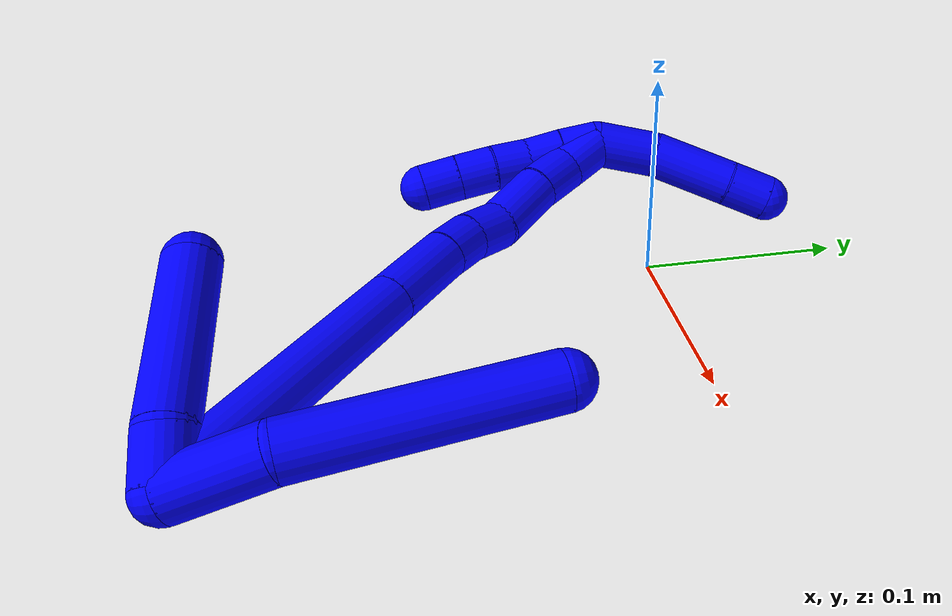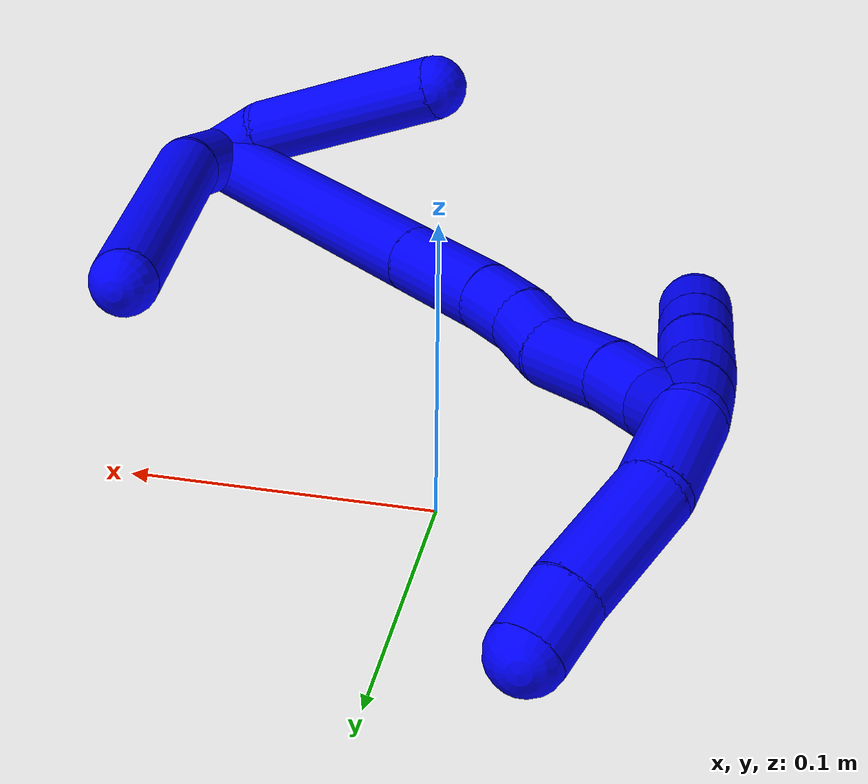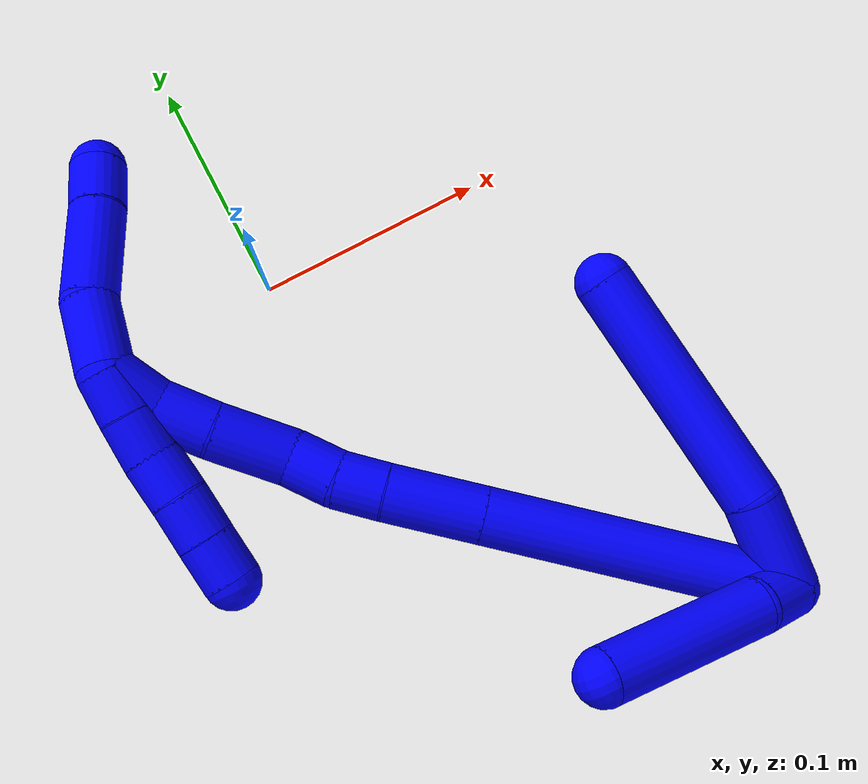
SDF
<sdf version="1.7">
 <world name="default">
  <model name="1">
   <static>0</static>
   <link name="1">
    <collision name="collision-cylinder-e_1_2_8">
     <pose>-0.003064 -3.9e-05 0.020586 0.001913 -0.147737 -0.000142</pose>
     <geometry><cylinder><radius>0.0125</radius><length>0.041626</length></cylinder></geometry>
     <surface>
      <friction><ode><mu>1.16</mu><mu2>1.16</mu2><slip1>0</slip1><slip2>0</slip2></ode></friction>
      <contact><ode><kp>1e+06</kp><kd>1</kd><max_vel>0</max_vel><min_depth>0.001</min_depth></ode></contact>
     </surface>
    </collision>
    <visual name="visual-cylinder-e_1_2_8">
     <pose>-0.003064 -3.9e-05 0.020586 0.001913 -0.147737 -0.000142</pose>
     <geometry><cylinder><radius>0.0125</radius><length>0.041626</length></cylinder></geometry>
     <material><ambient>0 0 1 1</ambient></material>
    </visual>
    <collision name="collision-cylinder-e_2_8_6">
     <pose>0.000503 0.004969 0.094715 -0.094006 0.122664 -0.005777</pose>
     <geometry><cylinder><radius>0.0125</radius><length>0.108374</length></cylinder></geometry>
     <surface>
      <friction><ode><mu>1.16</mu><mu2>1.16</mu2><slip1>0</slip1><slip2>0</slip2></ode></friction>
      <contact><ode><kp>1e+06</kp><kd>1</kd><max_vel>0</max_vel><min_depth>0.001</min_depth></ode></contact>
     </surface>
    </collision>
    <visual name="visual-cylinder-e_2_8_6">
     <pose>0.000503 0.004969 0.094715 -0.094006 0.122664 -0.005777</pose>
     <geometry><cylinder><radius>0.0125</radius><length>0.108374</length></cylinder></geometry>
     <material><ambient>0 0 1 1</ambient></material>
    </visual>
    <collision name="collision-cylinder-e_1_2_9">
     <pose>-0.0049 0.01035 0.001474 -1.42937 -0.438282 0.3818</pose>
     <geometry><cylinder><radius>0.0125</radius><length>0.023091</length></cylinder></geometry>
     <surface>
      <friction><ode><mu>1.16</mu><mu2>1.16</mu2><slip1>0</slip1><slip2>0</slip2></ode></friction>
      <contact><ode><kp>1e+06</kp><kd>1</kd><max_vel>0</max_vel><min_depth>0.001</min_depth></ode></contact>
     </surface>
    </collision>
    <visual name="visual-cylinder-e_1_2_9">
     <pose>-0.0049 0.01035 0.001474 -1.42937 -0.438282 0.3818</pose>
     <geometry><cylinder><radius>0.0125</radius><length>0.023091</length></cylinder></geometry>
     <material><ambient>0 0 1 1</ambient></material>
    </visual>
    <collision name="collision-cylinder-e_2_9_5">
     <pose>-0.016529 0.058237 0.007888 -1.43992 -0.175909 0.154363</pose>
     <geometry><cylinder><radius>0.0125</radius><length>0.076909</length></cylinder></geometry>
     <surface>
      <friction><ode><mu>1.16</mu><mu2>1.16</mu2><slip1>0</slip1><slip2>0</slip2></ode></friction>
      <contact><ode><kp>1e+06</kp><kd>1</kd><max_vel>0</max_vel><min_depth>0.001</min_depth></ode></contact>
     </surface>
    </collision>
    <visual name="visual-cylinder-e_2_9_5">
     <pose>-0.016529 0.058237 0.007888 -1.43992 -0.175909 0.154363</pose>
     <geometry><cylinder><radius>0.0125</radius><length>0.076909</length></cylinder></geometry>
     <material><ambient>0 0 1 1</ambient></material>
    </visual>
    <collision name="collision-cylinder-e_1_2_10">
     <pose>0.012546 0.048591 0.042269 -0.854858 0.192389 -0.08785</pose>
     <geometry><cylinder><radius>0.0125</radius><length>0.131227</length></cylinder></geometry>
     <surface>
      <friction><ode><mu>1.16</mu><mu2>1.16</mu2><slip1>0</slip1><slip2>0</slip2></ode></friction>
      <contact><ode><kp>1e+06</kp><kd>1</kd><max_vel>0</max_vel><min_depth>0.001</min_depth></ode></contact>
     </surface>
    </collision>
    <visual name="visual-cylinder-e_1_2_10">
     <pose>0.012546 0.048591 0.042269 -0.854858 0.192389 -0.08785</pose>
     <geometry><cylinder><radius>0.0125</radius><length>0.131227</length></cylinder></geometry>
     <material><ambient>0 0 1 1</ambient></material>
    </visual>
    <collision name="collision-cylinder-e_2_10_11">
     <pose>0.029097 0.112702 0.098031 -0.855215 0.192393 -0.087894</pose>
     <geometry><cylinder><radius>0.0125</radius><length>0.041904</length></cylinder></geometry>
     <surface>
      <friction><ode><mu>1.16</mu><mu2>1.16</mu2><slip1>0</slip1><slip2>0</slip2></ode></friction>
      <contact><ode><kp>1e+06</kp><kd>1</kd><max_vel>0</max_vel><min_depth>0.001</min_depth></ode></contact>
     </surface>
    </collision>
    <visual name="visual-cylinder-e_2_10_11">
     <pose>0.029097 0.112702 0.098031 -0.855215 0.192393 -0.087894</pose>
     <geometry><cylinder><radius>0.0125</radius><length>0.041904</length></cylinder></geometry>
     <material><ambient>0 0 1 1</ambient></material>
    </visual>
    <collision name="collision-cylinder-e_3_11_12">
     <pose>0.035661 0.135515 0.118318 -0.820671 0.25121 -0.109752</pose>
     <geometry><cylinder><radius>0.0125</radius><length>0.020581</length></cylinder></geometry>
     <surface>
      <friction><ode><mu>1.16</mu><mu2>1.16</mu2><slip1>0</slip1><slip2>0</slip2></ode></friction>
      <contact><ode><kp>1e+06</kp><kd>1</kd><max_vel>0</max_vel><min_depth>0.001</min_depth></ode></contact>
     </surface>
    </collision>
    <visual name="visual-cylinder-e_3_11_12">
     <pose>0.035661 0.135515 0.118318 -0.820671 0.25121 -0.109752</pose>
     <geometry><cylinder><radius>0.0125</radius><length>0.020581</length></cylinder></geometry>
     <material><ambient>0 0 1 1</ambient></material>
    </visual>
    <collision name="collision-cylinder-e_4_12_13">
     <pose>0.041423 0.148814 0.13348 -0.622635 0.301557 -0.0977</pose>
     <geometry><cylinder><radius>0.0125</radius><length>0.021572</length></cylinder></geometry>
     <surface>
      <friction><ode><mu>1.16</mu><mu2>1.16</mu2><slip1>0</slip1><slip2>0</slip2></ode></friction>
      <contact><ode><kp>1e+06</kp><kd>1</kd><max_vel>0</max_vel><min_depth>0.001</min_depth></ode></contact>
     </surface>
    </collision>
    <visual name="visual-cylinder-e_4_12_13">
     <pose>0.041423 0.148814 0.13348 -0.622635 0.301557 -0.0977</pose>
     <geometry><cylinder><radius>0.0125</radius><length>0.021572</length></cylinder></geometry>
     <material><ambient>0 0 1 1</ambient></material>
    </visual>
    <collision name="collision-cylinder-e_5_13_14">
     <pose>0.045355 0.166927 0.154285 -0.771877 0.041936 -0.017041</pose>
     <geometry><cylinder><radius>0.0125</radius><length>0.034746</length></cylinder></geometry>
     <surface>
      <friction><ode><mu>1.16</mu><mu2>1.16</mu2><slip1>0</slip1><slip2>0</slip2></ode></friction>
      <contact><ode><kp>1e+06</kp><kd>1</kd><max_vel>0</max_vel><min_depth>0.001</min_depth></ode></contact>
     </surface>
    </collision>
    <visual name="visual-cylinder-e_5_13_14">
     <pose>0.045355 0.166927 0.154285 -0.771877 0.041936 -0.017041</pose>
     <geometry><cylinder><radius>0.0125</radius><length>0.034746</length></cylinder></geometry>
     <material><ambient>0 0 1 1</ambient></material>
    </visual>
    <collision name="collision-cylinder-e_6_14_15">
     <pose>0.047685 0.18714 0.1763 -0.702429 0.126987 -0.046583</pose>
     <geometry><cylinder><radius>0.0125</radius><length>0.025297</length></cylinder></geometry>
     <surface>
      <friction><ode><mu>1.16</mu><mu2>1.16</mu2><slip1>0</slip1><slip2>0</slip2></ode></friction>
      <contact><ode><kp>1e+06</kp><kd>1</kd><max_vel>0</max_vel><min_depth>0.001</min_depth></ode></contact>
     </surface>
    </collision>
    <visual name="visual-cylinder-e_6_14_15">
     <pose>0.047685 0.18714 0.1763 -0.702429 0.126987 -0.046583</pose>
     <geometry><cylinder><radius>0.0125</radius><length>0.025297</length></cylinder></geometry>
     <material><ambient>0 0 1 1</ambient></material>
    </visual>
    <collision name="collision-cylinder-e_7_15_1">
     <pose>0.048045 0.201128 0.196649 -0.499826 -0.100812 0.025753</pose>
     <geometry><cylinder><radius>0.0125</radius><length>0.024673</length></cylinder></geometry>
     <surface>
      <friction><ode><mu>1.16</mu><mu2>1.16</mu2><slip1>0</slip1><slip2>0</slip2></ode></friction>
      <contact><ode><kp>1e+06</kp><kd>1</kd><max_vel>0</max_vel><min_depth>0.001</min_depth></ode></contact>
     </surface>
    </collision>
    <visual name="visual-cylinder-e_7_15_1">
     <pose>0.048045 0.201128 0.196649 -0.499826 -0.100812 0.025753</pose>
     <geometry><cylinder><radius>0.0125</radius><length>0.024673</length></cylinder></geometry>
     <material><ambient>0 0 1 1</ambient></material>
    </visual>
    <collision name="collision-cylinder-e_1_1_16">
     <pose>0.05201 0.202927 0.222594 0.262934 0.319937 0.042663</pose>
     <geometry><cylinder><radius>0.0125</radius><length>0.033105</length></cylinder></geometry>
     <surface>
      <friction><ode><mu>1.16</mu><mu2>1.16</mu2><slip1>0</slip1><slip2>0</slip2></ode></friction>
      <contact><ode><kp>1e+06</kp><kd>1</kd><max_vel>0</max_vel><min_depth>0.001</min_depth></ode></contact>
     </surface>
    </collision>
    <visual name="visual-cylinder-e_1_1_16">
     <pose>0.05201 0.202927 0.222594 0.262934 0.319937 0.042663</pose>
     <geometry><cylinder><radius>0.0125</radius><length>0.033105</length></cylinder></geometry>
     <material><ambient>0 0 1 1</ambient></material>
    </visual>
    <collision name="collision-cylinder-e_2_16_17">
     <pose>0.064706 0.187864 0.255586 0.552195 0.343662 0.098262</pose>
     <geometry><cylinder><radius>0.0125</radius><length>0.04446</length></cylinder></geometry>
     <surface>
      <friction><ode><mu>1.16</mu><mu2>1.16</mu2><slip1>0</slip1><slip2>0</slip2></ode></friction>
      <contact><ode><kp>1e+06</kp><kd>1</kd><max_vel>0</max_vel><min_depth>0.001</min_depth></ode></contact>
     </surface>
    </collision>
    <visual name="visual-cylinder-e_2_16_17">
     <pose>0.064706 0.187864 0.255586 0.552195 0.343662 0.098262</pose>
     <geometry><cylinder><radius>0.0125</radius><length>0.04446</length></cylinder></geometry>
     <material><ambient>0 0 1 1</ambient></material>
    </visual>
    <collision name="collision-cylinder-e_3_17_4">
     <pose>0.076601 0.172073 0.282531 0.485211 0.403547 0.101161</pose>
     <geometry><cylinder><radius>0.0125</radius><length>0.022435</length></cylinder></geometry>
     <surface>
      <friction><ode><mu>1.16</mu><mu2>1.16</mu2><slip1>0</slip1><slip2>0</slip2></ode></friction>
      <contact><ode><kp>1e+06</kp><kd>1</kd><max_vel>0</max_vel><min_depth>0.001</min_depth></ode></contact>
     </surface>
    </collision>
    <visual name="visual-cylinder-e_3_17_4">
     <pose>0.076601 0.172073 0.282531 0.485211 0.403547 0.101161</pose>
     <geometry><cylinder><radius>0.0125</radius><length>0.022435</length></cylinder></geometry>
     <material><ambient>0 0 1 1</ambient></material>
    </visual>
    <collision name="collision-cylinder-e_1_1_18">
     <pose>0.046585 0.206918 0.197424 3.1323 -0.021861 -2.33741</pose>
     <geometry><cylinder><radius>0.0125</radius><length>0.02</length></cylinder></geometry>
     <surface>
      <friction><ode><mu>1.16</mu><mu2>1.16</mu2><slip1>0</slip1><slip2>0</slip2></ode></friction>
      <contact><ode><kp>1e+06</kp><kd>1</kd><max_vel>0</max_vel><min_depth>0.001</min_depth></ode></contact>
     </surface>
    </collision>
    <visual name="visual-cylinder-e_1_1_18">
     <pose>0.046585 0.206918 0.197424 3.1323 -0.021861 -2.33741</pose>
     <geometry><cylinder><radius>0.0125</radius><length>0.02</length></cylinder></geometry>
     <material><ambient>0 0 1 1</ambient></material>
    </visual>
    <collision name="collision-cylinder-e_2_18_19">
     <pose>0.046576 0.206349 0.17744 3.09398 0.020906 0.827351</pose>
     <geometry><cylinder><radius>0.0125</radius><length>0.02</length></cylinder></geometry>
     <surface>
      <friction><ode><mu>1.16</mu><mu2>1.16</mu2><slip1>0</slip1><slip2>0</slip2></ode></friction>
      <contact><ode><kp>1e+06</kp><kd>1</kd><max_vel>0</max_vel><min_depth>0.001</min_depth></ode></contact>
     </surface>
    </collision>
    <visual name="visual-cylinder-e_2_18_19">
     <pose>0.046576 0.206349 0.17744 3.09398 0.020906 0.827351</pose>
     <geometry><cylinder><radius>0.0125</radius><length>0.02</length></cylinder></geometry>
     <material><ambient>0 0 1 1</ambient></material>
    </visual>
    <collision name="collision-cylinder-e_3_19_20">
     <pose>0.045607 0.204733 0.157589 3.02656 -0.118025 -1.59652</pose>
     <geometry><cylinder><radius>0.0125</radius><length>0.02</length></cylinder></geometry>
     <surface>
      <friction><ode><mu>1.16</mu><mu2>1.16</mu2><slip1>0</slip1><slip2>0</slip2></ode></friction>
      <contact><ode><kp>1e+06</kp><kd>1</kd><max_vel>0</max_vel><min_depth>0.001</min_depth></ode></contact>
     </surface>
    </collision>
    <visual name="visual-cylinder-e_3_19_20">
     <pose>0.045607 0.204733 0.157589 3.02656 -0.118025 -1.59652</pose>
     <geometry><cylinder><radius>0.0125</radius><length>0.02</length></cylinder></geometry>
     <material><ambient>0 0 1 1</ambient></material>
    </visual>
    <collision name="collision-cylinder-e_4_20_21">
     <pose>0.044096 0.20268 0.137772 3.05004 -0.033377 -0.698781</pose>
     <geometry><cylinder><radius>0.0125</radius><length>0.02</length></cylinder></geometry>
     <surface>
      <friction><ode><mu>1.16</mu><mu2>1.16</mu2><slip1>0</slip1><slip2>0</slip2></ode></friction>
      <contact><ode><kp>1e+06</kp><kd>1</kd><max_vel>0</max_vel><min_depth>0.001</min_depth></ode></contact>
     </surface>
    </collision>
    <visual name="visual-cylinder-e_4_20_21">
     <pose>0.044096 0.20268 0.137772 3.05004 -0.033377 -0.698781</pose>
     <geometry><cylinder><radius>0.0125</radius><length>0.02</length></cylinder></geometry>
     <material><ambient>0 0 1 1</ambient></material>
    </visual>
    <collision name="collision-cylinder-e_5_21_3">
     <pose>0.043635 0.200702 0.117877 3.03495 -0.012762 -0.237983</pose>
     <geometry><cylinder><radius>0.0125</radius><length>0.02</length></cylinder></geometry>
     <surface>
      <friction><ode><mu>1.16</mu><mu2>1.16</mu2><slip1>0</slip1><slip2>0</slip2></ode></friction>
      <contact><ode><kp>1e+06</kp><kd>1</kd><max_vel>0</max_vel><min_depth>0.001</min_depth></ode></contact>
     </surface>
    </collision>
    <visual name="visual-cylinder-e_5_21_3">
     <pose>0.043635 0.200702 0.117877 3.03495 -0.012762 -0.237983</pose>
     <geometry><cylinder><radius>0.0125</radius><length>0.02</length></cylinder></geometry>
     <material><ambient>0 0 1 1</ambient></material>
    </visual>
    <collision name="collision-sphere-3">
     <pose>0.043507 0.199637 0.107934 0 -0 0</pose>
     <geometry><sphere><radius>0.0125</radius></sphere></geometry>
     <surface>
      <friction><ode><mu>1.16</mu><mu2>1.16</mu2><slip1>0</slip1><slip2>0</slip2></ode></friction>
      <contact><ode><kp>1e+06</kp><kd>1</kd><max_vel>0</max_vel><min_depth>0.001</min_depth></ode></contact>
     </surface>
    </collision>
    <visual name="visual-sphere-3">
     <pose>0.043507 0.199637 0.107934 0 -0 0</pose>
     <geometry><sphere><radius>0.0125</radius></sphere></geometry>
     <material><ambient>0 0 1 1</ambient></material>
    </visual>
    <collision name="collision-sphere-21">
     <pose>0.043762 0.201766 0.127819 0 -0 0</pose>
     <geometry><sphere><radius>0.0125</radius></sphere></geometry>
     <surface>
      <friction><ode><mu>1.16</mu><mu2>1.16</mu2><slip1>0</slip1><slip2>0</slip2></ode></friction>
      <contact><ode><kp>1e+06</kp><kd>1</kd><max_vel>0</max_vel><min_depth>0.001</min_depth></ode></contact>
     </surface>
    </collision>
    <visual name="visual-sphere-21">
     <pose>0.043762 0.201766 0.127819 0 -0 0</pose>
     <geometry><sphere><radius>0.0125</radius></sphere></geometry>
     <material><ambient>0 0 1 1</ambient></material>
    </visual>
    <collision name="collision-sphere-20">
     <pose>0.04443 0.203593 0.147724 0 -0 0</pose>
     <geometry><sphere><radius>0.0125</radius></sphere></geometry>
     <surface>
      <friction><ode><mu>1.16</mu><mu2>1.16</mu2><slip1>0</slip1><slip2>0</slip2></ode></friction>
      <contact><ode><kp>1e+06</kp><kd>1</kd><max_vel>0</max_vel><min_depth>0.001</min_depth></ode></contact>
     </surface>
    </collision>
    <visual name="visual-sphere-20">
     <pose>0.04443 0.203593 0.147724 0 -0 0</pose>
     <geometry><sphere><radius>0.0125</radius></sphere></geometry>
     <material><ambient>0 0 1 1</ambient></material>
    </visual>
    <collision name="collision-sphere-19">
     <pose>0.046785 0.205873 0.167454 0 -0 0</pose>
     <geometry><sphere><radius>0.0125</radius></sphere></geometry>
     <surface>
      <friction><ode><mu>1.16</mu><mu2>1.16</mu2><slip1>0</slip1><slip2>0</slip2></ode></friction>
      <contact><ode><kp>1e+06</kp><kd>1</kd><max_vel>0</max_vel><min_depth>0.001</min_depth></ode></contact>
     </surface>
    </collision>
    <visual name="visual-sphere-19">
     <pose>0.046785 0.205873 0.167454 0 -0 0</pose>
     <geometry><sphere><radius>0.0125</radius></sphere></geometry>
     <material><ambient>0 0 1 1</ambient></material>
    </visual>
    <collision name="collision-sphere-10">
     <pose>0.025091 0.097181 0.084539 0 -0 0</pose>
     <geometry><sphere><radius>0.0125</radius></sphere></geometry>
     <surface>
      <friction><ode><mu>1.16</mu><mu2>1.16</mu2><slip1>0</slip1><slip2>0</slip2></ode></friction>
      <contact><ode><kp>1e+06</kp><kd>1</kd><max_vel>0</max_vel><min_depth>0.001</min_depth></ode></contact>
     </surface>
    </collision>
    <visual name="visual-sphere-10">
     <pose>0.025091 0.097181 0.084539 0 -0 0</pose>
     <geometry><sphere><radius>0.0125</radius></sphere></geometry>
     <material><ambient>0 0 1 1</ambient></material>
    </visual>
    <collision name="collision-sphere-5">
     <pose>-0.023259 0.095774 0.012829 0 -0 0</pose>
     <geometry><sphere><radius>0.0125</radius></sphere></geometry>
     <surface>
      <friction><ode><mu>1.16</mu><mu2>1.16</mu2><slip1>0</slip1><slip2>0</slip2></ode></friction>
      <contact><ode><kp>1e+06</kp><kd>1</kd><max_vel>0</max_vel><min_depth>0.001</min_depth></ode></contact>
     </surface>
    </collision>
    <visual name="visual-sphere-5">
     <pose>-0.023259 0.095774 0.012829 0 -0 0</pose>
     <geometry><sphere><radius>0.0125</radius></sphere></geometry>
     <material><ambient>0 0 1 1</ambient></material>
    </visual>
    <collision name="collision-sphere-6">
     <pose>0.007133 0.010018 0.148257 0 -0 0</pose>
     <geometry><sphere><radius>0.0125</radius></sphere></geometry>
     <surface>
      <friction><ode><mu>1.16</mu><mu2>1.16</mu2><slip1>0</slip1><slip2>0</slip2></ode></friction>
      <contact><ode><kp>1e+06</kp><kd>1</kd><max_vel>0</max_vel><min_depth>0.001</min_depth></ode></contact>
     </surface>
    </collision>
    <visual name="visual-sphere-6">
     <pose>0.007133 0.010018 0.148257 0 -0 0</pose>
     <geometry><sphere><radius>0.0125</radius></sphere></geometry>
     <material><ambient>0 0 1 1</ambient></material>
    </visual>
    <collision name="collision-sphere-9">
     <pose>-0.009799 0.020699 0.002947 0 -0 0</pose>
     <geometry><sphere><radius>0.0125</radius></sphere></geometry>
     <surface>
      <friction><ode><mu>1.16</mu><mu2>1.16</mu2><slip1>0</slip1><slip2>0</slip2></ode></friction>
      <contact><ode><kp>1e+06</kp><kd>1</kd><max_vel>0</max_vel><min_depth>0.001</min_depth></ode></contact>
     </surface>
    </collision>
    <visual name="visual-sphere-9">
     <pose>-0.009799 0.020699 0.002947 0 -0 0</pose>
     <geometry><sphere><radius>0.0125</radius></sphere></geometry>
     <material><ambient>0 0 1 1</ambient></material>
    </visual>
    <collision name="collision-sphere-2">
     <geometry><sphere><radius>0.0125</radius></sphere></geometry>
     <surface>
      <friction><ode><mu>1.16</mu><mu2>1.16</mu2><slip1>0</slip1><slip2>0</slip2></ode></friction>
      <contact><ode><kp>1e+06</kp><kd>1</kd><max_vel>0</max_vel><min_depth>0.001</min_depth></ode></contact>
     </surface>
    </collision>
    <visual name="visual-sphere-2">
     <geometry><sphere><radius>0.0125</radius></sphere></geometry>
     <material><ambient>0 0 1 1</ambient></material>
    </visual>
    <collision name="collision-sphere-8">
     <pose>-0.006127 -7.9e-05 0.041172 0 -0 0</pose>
     <geometry><sphere><radius>0.0125</radius></sphere></geometry>
     <surface>
      <friction><ode><mu>1.16</mu><mu2>1.16</mu2><slip1>0</slip1><slip2>0</slip2></ode></friction>
      <contact><ode><kp>1e+06</kp><kd>1</kd><max_vel>0</max_vel><min_depth>0.001</min_depth></ode></contact>
     </surface>
    </collision>
    <visual name="visual-sphere-8">
     <pose>-0.006127 -7.9e-05 0.041172 0 -0 0</pose>
     <geometry><sphere><radius>0.0125</radius></sphere></geometry>
     <material><ambient>0 0 1 1</ambient></material>
    </visual>
    <collision name="collision-sphere-11">
     <pose>0.033104 0.128223 0.111523 0 -0 0</pose>
     <geometry><sphere><radius>0.0125</radius></sphere></geometry>
     <surface>
      <friction><ode><mu>1.16</mu><mu2>1.16</mu2><slip1>0</slip1><slip2>0</slip2></ode></friction>
      <contact><ode><kp>1e+06</kp><kd>1</kd><max_vel>0</max_vel><min_depth>0.001</min_depth></ode></contact>
     </surface>
    </collision>
    <visual name="visual-sphere-11">
     <pose>0.033104 0.128223 0.111523 0 -0 0</pose>
     <geometry><sphere><radius>0.0125</radius></sphere></geometry>
     <material><ambient>0 0 1 1</ambient></material>
    </visual>
    <collision name="collision-sphere-12">
     <pose>0.038219 0.142807 0.125113 0 -0 0</pose>
     <geometry><sphere><radius>0.0125</radius></sphere></geometry>
     <surface>
      <friction><ode><mu>1.16</mu><mu2>1.16</mu2><slip1>0</slip1><slip2>0</slip2></ode></friction>
      <contact><ode><kp>1e+06</kp><kd>1</kd><max_vel>0</max_vel><min_depth>0.001</min_depth></ode></contact>
     </surface>
    </collision>
    <visual name="visual-sphere-12">
     <pose>0.038219 0.142807 0.125113 0 -0 0</pose>
     <geometry><sphere><radius>0.0125</radius></sphere></geometry>
     <material><ambient>0 0 1 1</ambient></material>
    </visual>
    <collision name="collision-sphere-13">
     <pose>0.044627 0.15482 0.141846 0 -0 0</pose>
     <geometry><sphere><radius>0.0125</radius></sphere></geometry>
     <surface>
      <friction><ode><mu>1.16</mu><mu2>1.16</mu2><slip1>0</slip1><slip2>0</slip2></ode></friction>
      <contact><ode><kp>1e+06</kp><kd>1</kd><max_vel>0</max_vel><min_depth>0.001</min_depth></ode></contact>
     </surface>
    </collision>
    <visual name="visual-sphere-13">
     <pose>0.044627 0.15482 0.141846 0 -0 0</pose>
     <geometry><sphere><radius>0.0125</radius></sphere></geometry>
     <material><ambient>0 0 1 1</ambient></material>
    </visual>
    <collision name="collision-sphere-14">
     <pose>0.046083 0.179033 0.166723 0 -0 0</pose>
     <geometry><sphere><radius>0.0125</radius></sphere></geometry>
     <surface>
      <friction><ode><mu>1.16</mu><mu2>1.16</mu2><slip1>0</slip1><slip2>0</slip2></ode></friction>
      <contact><ode><kp>1e+06</kp><kd>1</kd><max_vel>0</max_vel><min_depth>0.001</min_depth></ode></contact>
     </surface>
    </collision>
    <visual name="visual-sphere-14">
     <pose>0.046083 0.179033 0.166723 0 -0 0</pose>
     <geometry><sphere><radius>0.0125</radius></sphere></geometry>
     <material><ambient>0 0 1 1</ambient></material>
    </visual>
    <collision name="collision-sphere-15">
     <pose>0.049287 0.195246 0.185877 0 -0 0</pose>
     <geometry><sphere><radius>0.0125</radius></sphere></geometry>
     <surface>
      <friction><ode><mu>1.16</mu><mu2>1.16</mu2><slip1>0</slip1><slip2>0</slip2></ode></friction>
      <contact><ode><kp>1e+06</kp><kd>1</kd><max_vel>0</max_vel><min_depth>0.001</min_depth></ode></contact>
     </surface>
    </collision>
    <visual name="visual-sphere-15">
     <pose>0.049287 0.195246 0.185877 0 -0 0</pose>
     <geometry><sphere><radius>0.0125</radius></sphere></geometry>
     <material><ambient>0 0 1 1</ambient></material>
    </visual>
    <collision name="collision-sphere-1">
     <pose>0.046804 0.207011 0.207421 0 -0 0</pose>
     <geometry><sphere><radius>0.0125</radius></sphere></geometry>
     <surface>
      <friction><ode><mu>1.16</mu><mu2>1.16</mu2><slip1>0</slip1><slip2>0</slip2></ode></friction>
      <contact><ode><kp>1e+06</kp><kd>1</kd><max_vel>0</max_vel><min_depth>0.001</min_depth></ode></contact>
     </surface>
    </collision>
    <visual name="visual-sphere-1">
     <pose>0.046804 0.207011 0.207421 0 -0 0</pose>
     <geometry><sphere><radius>0.0125</radius></sphere></geometry>
     <material><ambient>0 0 1 1</ambient></material>
    </visual>
    <collision name="collision-sphere-18">
     <pose>0.046367 0.206825 0.187427 0 -0 0</pose>
     <geometry><sphere><radius>0.0125</radius></sphere></geometry>
     <surface>
      <friction><ode><mu>1.16</mu><mu2>1.16</mu2><slip1>0</slip1><slip2>0</slip2></ode></friction>
      <contact><ode><kp>1e+06</kp><kd>1</kd><max_vel>0</max_vel><min_depth>0.001</min_depth></ode></contact>
     </surface>
    </collision>
    <visual name="visual-sphere-18">
     <pose>0.046367 0.206825 0.187427 0 -0 0</pose>
     <geometry><sphere><radius>0.0125</radius></sphere></geometry>
     <material><ambient>0 0 1 1</ambient></material>
    </visual>
    <collision name="collision-sphere-16">
     <pose>0.057216 0.198843 0.237767 0 -0 0</pose>
     <geometry><sphere><radius>0.0125</radius></sphere></geometry>
     <surface>
      <friction><ode><mu>1.16</mu><mu2>1.16</mu2><slip1>0</slip1><slip2>0</slip2></ode></friction>
      <contact><ode><kp>1e+06</kp><kd>1</kd><max_vel>0</max_vel><min_depth>0.001</min_depth></ode></contact>
     </surface>
    </collision>
    <visual name="visual-sphere-16">
     <pose>0.057216 0.198843 0.237767 0 -0 0</pose>
     <geometry><sphere><radius>0.0125</radius></sphere></geometry>
     <material><ambient>0 0 1 1</ambient></material>
    </visual>
    <collision name="collision-sphere-17">
     <pose>0.072196 0.176885 0.273406 0 -0 0</pose>
     <geometry><sphere><radius>0.0125</radius></sphere></geometry>
     <surface>
      <friction><ode><mu>1.16</mu><mu2>1.16</mu2><slip1>0</slip1><slip2>0</slip2></ode></friction>
      <contact><ode><kp>1e+06</kp><kd>1</kd><max_vel>0</max_vel><min_depth>0.001</min_depth></ode></contact>
     </surface>
    </collision>
    <visual name="visual-sphere-17">
     <pose>0.072196 0.176885 0.273406 0 -0 0</pose>
     <geometry><sphere><radius>0.0125</radius></sphere></geometry>
     <material><ambient>0 0 1 1</ambient></material>
    </visual>
    <collision name="collision-sphere-4">
     <pose>0.081006 0.167262 0.291657 0 -0 0</pose>
     <geometry><sphere><radius>0.0125</radius></sphere></geometry>
     <surface>
      <friction><ode><mu>1.16</mu><mu2>1.16</mu2><slip1>0</slip1><slip2>0</slip2></ode></friction>
      <contact><ode><kp>1e+06</kp><kd>1</kd><max_vel>0</max_vel><min_depth>0.001</min_depth></ode></contact>
     </surface>
    </collision>
    <visual name="visual-sphere-4">
     <pose>0.081006 0.167262 0.291657 0 -0 0</pose>
     <geometry><sphere><radius>0.0125</radius></sphere></geometry>
     <material><ambient>0 0 1 1</ambient></material>
    </visual>
    <inertial>
     <pose>0.023801 0.102944 0.109649 0 -0 0</pose>
     <mass>0.75</mass>
     <inertia>
      <ixx>0.000376</ixx>
      <ixy>0</ixy>
      <ixz>0</ixz>
      <iyy>0.000287</iyy>
      <iyz>0</iyz>
      <izz>-0.000223</izz>
     </inertia>
    </inertial>
   </link>
   <pose>0.134258 -0.217323 0.011494 0.82269 1.3236 2.39868</pose>
  </model>
 </world>
</sdf>
